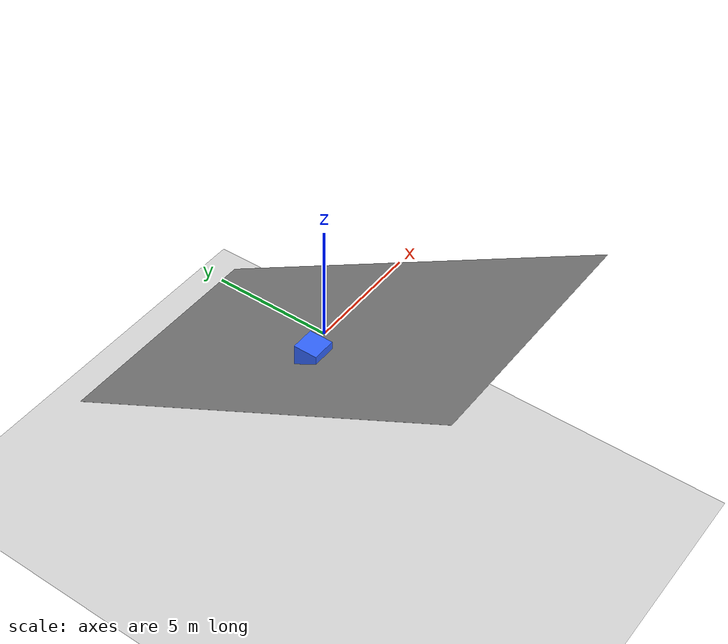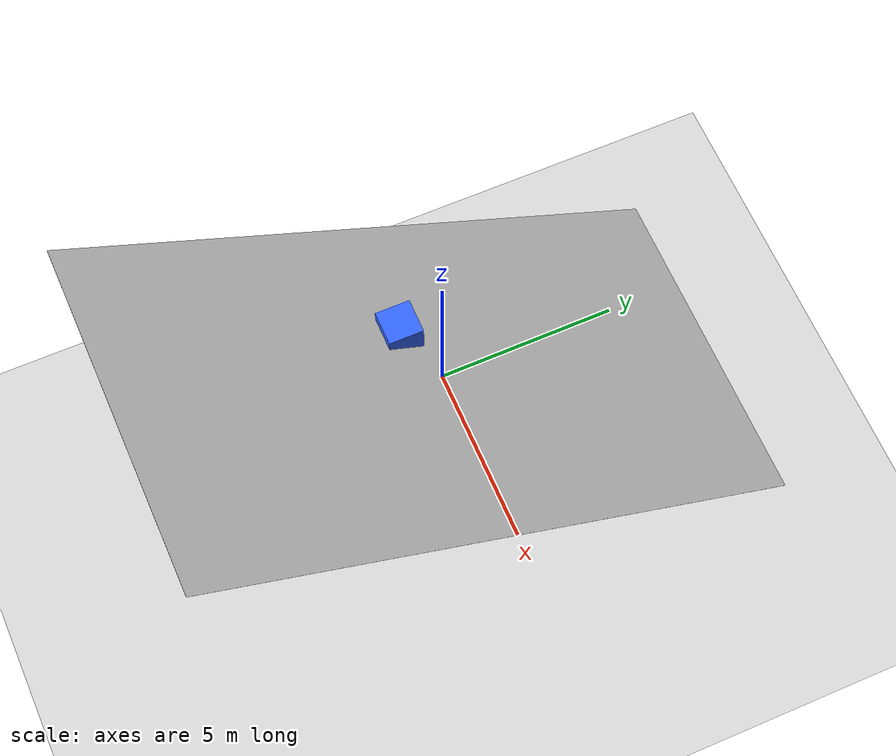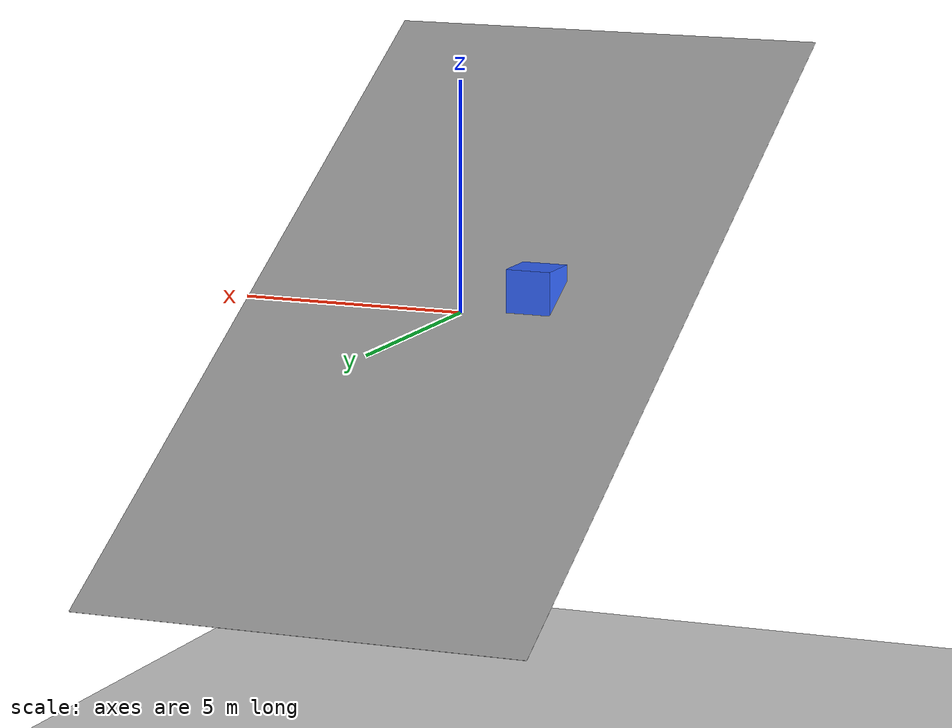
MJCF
<mujoco>
  <option gravity="0 0 -9.81"/>
  <worldbody>
    <light diffuse="0.6 0.6 0.6" pos="0 0 5" dir="0 0 -1"/>
    <body name="ground" pos="0 0 -10">
      <geom type="plane" size="50 50 0.1" rgba="0.85 0.85 0.85 1" friction="1 1 1"/>
    </body>
    <body name="ramp" pos="0 0 0">
      <geom type="plane" size="5 10 0.1" quat="0.2588 0.9659 0 0" rgba="0.6 0.6 0.6 1" friction="0.3 0.3 0.3"/>
    </body>
    <body name="block" pos="-1.5 -0.6 0.5">
      <geom type="box" size="0.5 0.5 0.5" mass="1" rgba="0.2 0.4 1 1"/>
      <joint type="free"/>
    </body>
  </worldbody>
</mujoco>
